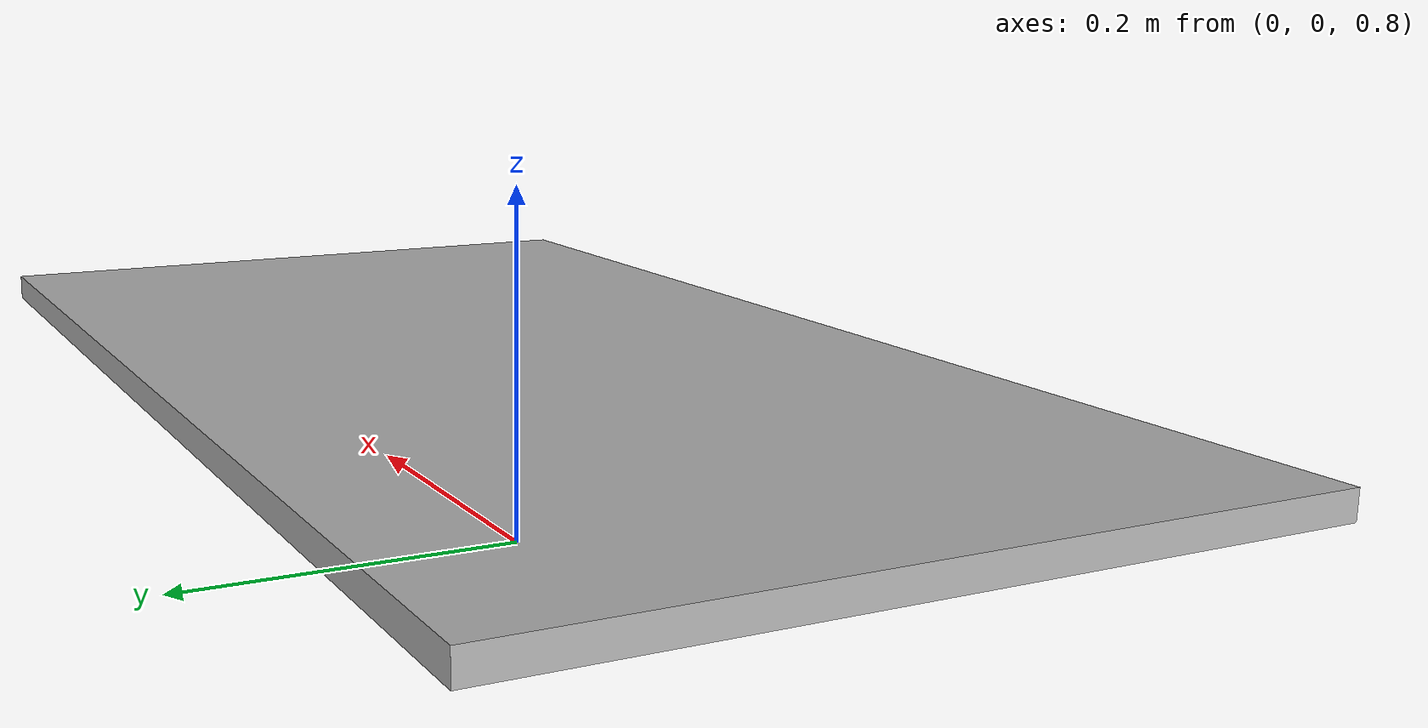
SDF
<sdf version="1.7">
 <world name="default">
  <light name="sun" type="directional">
   <pose>0 0 10 0 -0 0</pose>
   <diffuse>0.8 0.8 0.8 1</diffuse>
   <specular>0.2 0.2 0.2 1</specular>
   <attenuation>
    <range>1000</range>
    <constant>0.9</constant>
    <linear>0.01</linear>
    <quadratic>0.001</quadratic>
   </attenuation>
   <direction>-0.5 0.1 -0.9</direction>
   <spot><inner_angle>0</inner_angle><outer_angle>0</outer_angle><falloff>0</falloff></spot>
  </light>
  <model name="ground_plane">
   <static>1</static>
   <link name="link">
    <collision name="collision">
     <geometry><plane><normal>0 0 1</normal><size>100 100</size></plane></geometry>
     <surface><friction><ode><mu>100</mu><mu2>50</mu2></ode></friction></surface>
    </collision>
    <visual name="visual">
     <cast_shadows>0</cast_shadows>
     <geometry><plane><normal>0 0 1</normal><size>100 100</size></plane></geometry>
     <material>
      <script><uri>file://media/materials/scripts/gazebo.material</uri><name>Gazebo/Grey</name></script>
     </material>
    </visual>
   </link>
  </model>
  <gravity>0 0 -9.8</gravity>
  <magnetic_field>6e-06 2.3e-05 -4.2e-05</magnetic_field>
  <atmosphere type="adiabatic"/>
  <physics type="ode">
   <max_step_size>0.001</max_step_size>
   <real_time_factor>1</real_time_factor>
   <real_time_update_rate>1000</real_time_update_rate>
  </physics>
  <scene><ambient>0.4 0.4 0.4 1</ambient><background>0.7 0.7 0.7 1</background><shadows>1</shadows></scene>
  <audio><device>default</device></audio>
  <spherical_coordinates>
   <surface_model>EARTH_WGS84</surface_model>
   <latitude_deg>0</latitude_deg>
   <longitude_deg>0</longitude_deg>
   <elevation>0</elevation>
   <heading_deg>0</heading_deg>
  </spherical_coordinates>
  <model name="table">
   <static>1</static>
   <link name="link">
    <pose>0 0 0.45 0 0 0</pose>
    <collision name="collision1">
     <pose>0 0 0.15 0 -0 0</pose>
     <geometry><box><size>0.375 0.2 0.015</size></box></geometry>
     <surface>
      <friction>
       <ode><mu>1</mu><mu2>1</mu2></ode>
       <torsional>
        <coefficient>1</coefficient>
        <use_patch_radius>1</use_patch_radius>
        <patch_radius>0</patch_radius>
        <surface_radius>0</surface_radius>
       </torsional>
       <bullet><friction><friction>1</friction><friction2>1</friction2></friction></bullet>
      </friction>
      <bounce><restitution_coefficient>0</restitution_coefficient><threshold>1e+06</threshold></bounce>
      <contact>
       <collide_without_contact>0</collide_without_contact>
       <collide_without_contact_bitmask>1</collide_without_contact_bitmask>
       <collide_bitmask>1</collide_bitmask>
       <ode>
        <soft_cfm>0</soft_cfm>
        <soft_erp>0.2</soft_erp>
        <kp>1e+13</kp>
        <kd>1</kd>
        <max_vel>0.01</max_vel>
        <min_depth>0</min_depth>
       </ode>
       <bullet><soft_cfm>0</soft_cfm><soft_erp>0.2</soft_erp><kp>1e+13</kp><kd>1</kd></bullet>
      </contact>
     </surface>
    </collision>
    <collision name="collision2">
     <pose>0 0 0.3 0 -0 0</pose>
     <geometry><box><size>0.375 0.2 0.015</size></box></geometry>
     <surface>
      <friction>
       <ode><mu>1</mu><mu2>1</mu2></ode>
       <torsional>
        <coefficient>1</coefficient>
        <use_patch_radius>1</use_patch_radius>
        <patch_radius>0</patch_radius>
        <surface_radius>0</surface_radius>
       </torsional>
       <bullet><friction><friction>1</friction><friction2>1</friction2></friction></bullet>
      </friction>
      <bounce><restitution_coefficient>0</restitution_coefficient><threshold>1e+06</threshold></bounce>
      <contact>
       <collide_without_contact>0</collide_without_contact>
       <collide_without_contact_bitmask>1</collide_without_contact_bitmask>
       <collide_bitmask>1</collide_bitmask>
       <ode>
        <soft_cfm>0</soft_cfm>
        <soft_erp>0.2</soft_erp>
        <kp>1e+13</kp>
        <kd>1</kd>
        <max_vel>0.01</max_vel>
        <min_depth>0</min_depth>
       </ode>
       <bullet><soft_cfm>0</soft_cfm><soft_erp>0.2</soft_erp><kp>1e+13</kp><kd>1</kd></bullet>
      </contact>
     </surface>
    </collision>
    <collision name="collision3">
     <pose>0 0 0.5 0 -0 0</pose>
     <geometry><box><size>0.375 0.2 0.015</size></box></geometry>
     <surface>
      <friction>
       <ode><mu>1</mu><mu2>1</mu2></ode>
       <torsional>
        <coefficient>1</coefficient>
        <use_patch_radius>1</use_patch_radius>
        <patch_radius>0</patch_radius>
        <surface_radius>0</surface_radius>
       </torsional>
       <bullet><friction><friction>1</friction><friction2>1</friction2></friction></bullet>
      </friction>
      <bounce><restitution_coefficient>0</restitution_coefficient><threshold>1e+06</threshold></bounce>
      <contact>
       <collide_without_contact>0</collide_without_contact>
       <collide_without_contact_bitmask>1</collide_without_contact_bitmask>
       <collide_bitmask>1</collide_bitmask>
       <ode>
        <soft_cfm>0</soft_cfm>
        <soft_erp>0.2</soft_erp>
        <kp>1e+13</kp>
        <kd>1</kd>
        <max_vel>0.01</max_vel>
        <min_depth>0</min_depth>
       </ode>
       <bullet><soft_cfm>0</soft_cfm><soft_erp>0.2</soft_erp><kp>1e+13</kp><kd>1</kd></bullet>
      </contact>
     </surface>
    </collision>
    <collision name="collision4">
     <pose>0 0 0.675 0 -0 0</pose>
     <geometry><box><size>0.375 0.2 0.015</size></box></geometry>
     <surface>
      <friction>
       <ode><mu>1</mu><mu2>1</mu2></ode>
       <torsional>
        <coefficient>1</coefficient>
        <use_patch_radius>1</use_patch_radius>
        <patch_radius>0</patch_radius>
        <surface_radius>0</surface_radius>
       </torsional>
       <bullet><friction><friction>1</friction><friction2>1</friction2></friction></bullet>
      </friction>
      <bounce><restitution_coefficient>0</restitution_coefficient><threshold>1e+06</threshold></bounce>
      <contact>
       <collide_without_contact>0</collide_without_contact>
       <collide_without_contact_bitmask>1</collide_without_contact_bitmask>
       <collide_bitmask>1</collide_bitmask>
       <ode>
        <soft_cfm>0</soft_cfm>
        <soft_erp>0.2</soft_erp>
        <kp>1e+13</kp>
        <kd>1</kd>
        <max_vel>0.01</max_vel>
        <min_depth>0</min_depth>
       </ode>
       <bullet><soft_cfm>0</soft_cfm><soft_erp>0.2</soft_erp><kp>1e+13</kp><kd>1</kd></bullet>
      </contact>
     </surface>
    </collision>
    <collision name="holding1_collision">
     <pose>0.3675 0 0.225 0 -0 1.57</pose>
     <geometry><box><size>0.2 0.005 0.025</size></box></geometry>
     <surface>
      <friction>
       <ode><mu>1</mu><mu2>1</mu2></ode>
       <torsional>
        <coefficient>1</coefficient>
        <use_patch_radius>1</use_patch_radius>
        <patch_radius>0</patch_radius>
        <surface_radius>0</surface_radius>
       </torsional>
       <bullet><friction><friction>1</friction><friction2>1</friction2></friction></bullet>
      </friction>
      <bounce><restitution_coefficient>0</restitution_coefficient><threshold>1e+06</threshold></bounce>
      <contact>
       <collide_without_contact>0</collide_without_contact>
       <collide_without_contact_bitmask>1</collide_without_contact_bitmask>
       <collide_bitmask>1</collide_bitmask>
       <ode>
        <soft_cfm>0</soft_cfm>
        <soft_erp>0.2</soft_erp>
        <kp>1e+13</kp>
        <kd>1</kd>
        <max_vel>0.01</max_vel>
        <min_depth>0</min_depth>
       </ode>
       <bullet><soft_cfm>0</soft_cfm><soft_erp>0.2</soft_erp><kp>1e+13</kp><kd>1</kd></bullet>
      </contact>
     </surface>
    </collision>
    <collision name="holding2_collision">
     <pose>-0.3675 0 0.225 0 -0 -1.57</pose>
     <geometry><box><size>0.2 0.005 0.025</size></box></geometry>
     <surface>
      <friction>
       <ode><mu>1</mu><mu2>1</mu2></ode>
       <torsional>
        <coefficient>1</coefficient>
        <use_patch_radius>1</use_patch_radius>
        <patch_radius>0</patch_radius>
        <surface_radius>0</surface_radius>
       </torsional>
       <bullet><friction><friction>1</friction><friction2>1</friction2></friction></bullet>
      </friction>
      <bounce><restitution_coefficient>0</restitution_coefficient><threshold>1e+06</threshold></bounce>
      <contact>
       <collide_without_contact>0</collide_without_contact>
       <collide_without_contact_bitmask>1</collide_without_contact_bitmask>
       <collide_bitmask>1</collide_bitmask>
       <ode>
        <soft_cfm>0</soft_cfm>
        <soft_erp>0.2</soft_erp>
        <kp>1e+13</kp>
        <kd>1</kd>
        <max_vel>0.01</max_vel>
        <min_depth>0</min_depth>
       </ode>
       <bullet><soft_cfm>0</soft_cfm><soft_erp>0.2</soft_erp><kp>1e+13</kp><kd>1</kd></bullet>
      </contact>
     </surface>
    </collision>
    <collision name="holding3_collision">
     <pose>0 0.1925 0.225 0 -0 0</pose>
     <geometry><box><size>0.005 0.2 0.025</size></box></geometry>
     <surface>
      <friction>
       <ode><mu>1</mu><mu2>1</mu2></ode>
       <torsional>
        <coefficient>1</coefficient>
        <use_patch_radius>1</use_patch_radius>
        <patch_radius>0</patch_radius>
        <surface_radius>0</surface_radius>
       </torsional>
       <bullet><friction><friction>1</friction><friction2>1</friction2></friction></bullet>
      </friction>
      <bounce><restitution_coefficient>0</restitution_coefficient><threshold>1e+06</threshold></bounce>
      <contact>
       <collide_without_contact>0</collide_without_contact>
       <collide_without_contact_bitmask>1</collide_without_contact_bitmask>
       <collide_bitmask>1</collide_bitmask>
       <ode>
        <soft_cfm>0</soft_cfm>
        <soft_erp>0.2</soft_erp>
        <kp>1e+13</kp>
        <kd>1</kd>
        <max_vel>0.01</max_vel>
        <min_depth>0</min_depth>
       </ode>
       <bullet><soft_cfm>0</soft_cfm><soft_erp>0.2</soft_erp><kp>1e+13</kp><kd>1</kd></bullet>
      </contact>
     </surface>
    </collision>
    <collision name="holding4_collision">
     <pose>0 -0.1925 0.225 0 -0 0</pose>
     <geometry><box><size>0.005 0.2 0.025</size></box></geometry>
     <surface>
      <friction>
       <ode><mu>1</mu><mu2>1</mu2></ode>
       <torsional>
        <coefficient>1</coefficient>
        <use_patch_radius>1</use_patch_radius>
        <patch_radius>0</patch_radius>
        <surface_radius>0</surface_radius>
       </torsional>
       <bullet><friction><friction>1</friction><friction2>1</friction2></friction></bullet>
      </friction>
      <bounce><restitution_coefficient>0</restitution_coefficient><threshold>1e+06</threshold></bounce>
      <contact>
       <collide_without_contact>0</collide_without_contact>
       <collide_without_contact_bitmask>1</collide_without_contact_bitmask>
       <collide_bitmask>1</collide_bitmask>
       <ode>
        <soft_cfm>0</soft_cfm>
        <soft_erp>0.2</soft_erp>
        <kp>1e+13</kp>
        <kd>1</kd>
        <max_vel>0.01</max_vel>
        <min_depth>0</min_depth>
       </ode>
       <bullet><soft_cfm>0</soft_cfm><soft_erp>0.2</soft_erp><kp>1e+13</kp><kd>1</kd></bullet>
      </contact>
     </surface>
    </collision>
    <visual name="visual">
     <pose>0 0 0.45 0 0 0</pose>
     <geometry><box><size>0.75 0.4 0.015</size></box></geometry>
     <material>
      <ambient>0.7 0.7 0.7 1</ambient>
      <diffuse>0.7 0.7 0.7 1</diffuse>
      <specular>0.3 0.3 0.3 1</specular>
     </material>
    </visual>
   </link>
  </model>
 </world>
</sdf>
